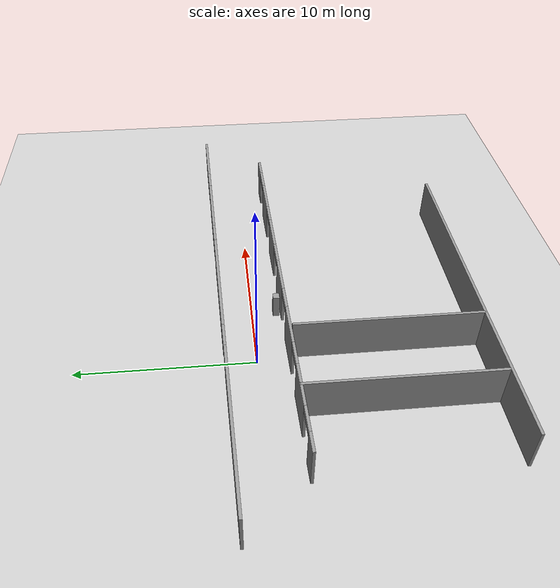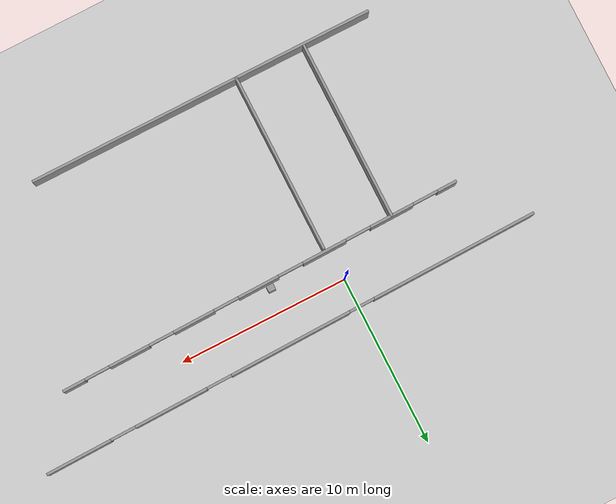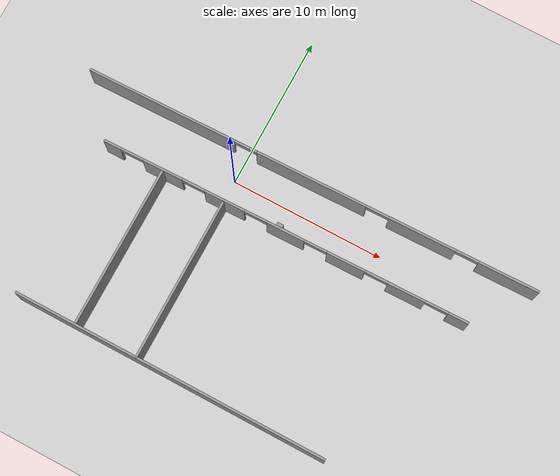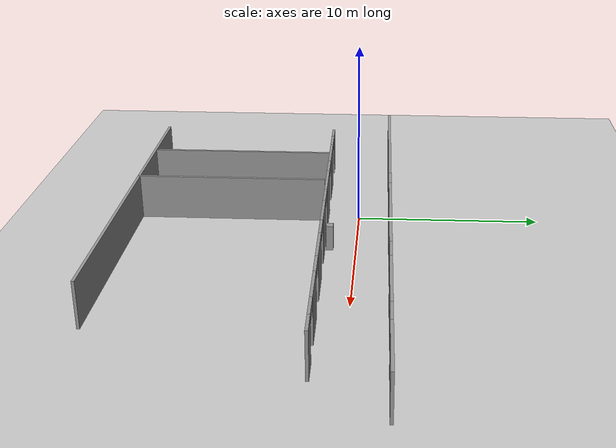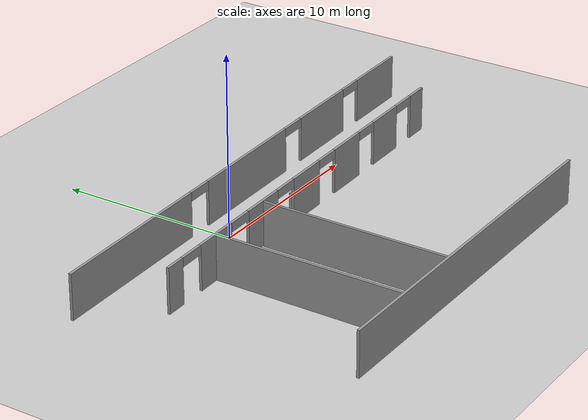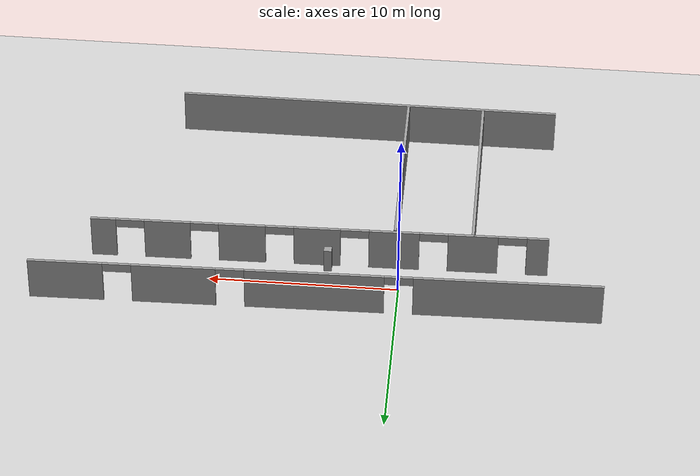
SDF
<sdf version="1.6">
 <world name="default">
  <model name="ground_plane">
   <static>1</static>
   <link name="link">
    <collision name="collision">
     <geometry><plane><normal>0 0 1</normal><size>100 100</size></plane></geometry>
     <surface>
      <contact><collide_bitmask>65535</collide_bitmask></contact>
      <friction><ode><mu>100</mu><mu2>50</mu2></ode></friction>
     </surface>
    </collision>
    <visual name="visual">
     <cast_shadows>0</cast_shadows>
     <geometry><plane><normal>0 0 1</normal><size>100 100</size></plane></geometry>
     <material>
      <script><uri>file://media/materials/scripts/gazebo.material</uri><name>Gazebo/Grey</name></script>
     </material>
    </visual>
   </link>
  </model>
  <model name="six_floor">
   <link name="Wall_118">
    <pose>2.65142 -0.016842 0 0 0 -3.12143</pose>
    <inertial>
     <inertia><ixx>0</ixx><ixy>0</ixy><ixz>0</ixz><iyy>0</iyy><iyz>0</iyz><izz>0</izz></inertia>
     <mass>0</mass>
    </inertial>
    <visual name="Wall_118_Visual_0">
     <pose>-12.9979 0 1.25 0 -0 0</pose>
     <geometry><box><size>3.91824 0.15 2.5</size></box></geometry>
     <material>
      <script><uri>file://media/materials/scripts/gazebo.material</uri><name>Gazebo/Grey</name></script>
      <ambient>1 1 1 1</ambient>
     </material>
     <meta><layer>0</layer></meta>
    </visual>
    <visual name="Wall_118_Visual_1">
     <pose>-7.34373 0 1.25 0 -0 0</pose>
     <geometry><box><size>4.39013 0.15 2.5</size></box></geometry>
     <material>
      <script><uri>file://media/materials/scripts/gazebo.material</uri><name>Gazebo/Grey</name></script>
      <ambient>1 1 1 1</ambient>
     </material>
     <meta><layer>0</layer></meta>
    </visual>
    <visual name="Wall_118_Visual_2">
     <pose>-0.014227 0 1.25 0 -0 0</pose>
     <geometry><box><size>7.26889 0.15 2.5</size></box></geometry>
     <material>
      <script><uri>file://media/materials/scripts/gazebo.material</uri><name>Gazebo/Grey</name></script>
      <ambient>1 1 1 1</ambient>
     </material>
     <meta><layer>0</layer></meta>
    </visual>
    <visual name="Wall_118_Visual_3">
     <pose>10.0386 0 1.25 0 -0 0</pose>
     <geometry><box><size>9.83681 0.15 2.5</size></box></geometry>
     <material>
      <script><uri>file://media/materials/scripts/gazebo.material</uri><name>Gazebo/Grey</name></script>
      <ambient>1 1 1 1</ambient>
     </material>
     <meta><layer>0</layer></meta>
    </visual>
    <visual name="Wall_118_Visual_4">
     <pose>-10.2888 0 2.25 0 -0 0</pose>
     <geometry><box><size>1.5 0.15 0.5</size></box></geometry>
     <material>
      <script><uri>file://media/materials/scripts/gazebo.material</uri><name>Gazebo/Grey</name></script>
      <ambient>1 1 1 1</ambient>
     </material>
     <meta><layer>0</layer></meta>
    </visual>
    <visual name="Wall_118_Visual_5">
     <pose>-4.39867 0 2.25 0 -0 0</pose>
     <geometry><box><size>1.5 0.15 0.5</size></box></geometry>
     <material>
      <script><uri>file://media/materials/scripts/gazebo.material</uri><name>Gazebo/Grey</name></script>
      <ambient>1 1 1 1</ambient>
     </material>
     <meta><layer>0</layer></meta>
    </visual>
    <visual name="Wall_118_Visual_6">
     <pose>4.37022 0 2.25 0 -0 0</pose>
     <geometry><box><size>1.5 0.15 0.5</size></box></geometry>
     <material>
      <script><uri>file://media/materials/scripts/gazebo.material</uri><name>Gazebo/Grey</name></script>
      <ambient>1 1 1 1</ambient>
     </material>
     <meta><layer>0</layer></meta>
    </visual>
    <collision name="Wall_118_Collision_0">
     <pose>-12.9979 0 1.25 0 -0 0</pose>
     <geometry><box><size>3.91824 0.15 2.5</size></box></geometry>
     <surface>
      <friction>
       <ode><mu>1</mu><mu2>1</mu2><fdir1>0 0 0</fdir1><slip1>0</slip1><slip2>0</slip2></ode>
       <torsional>
        <coefficient>1</coefficient>
        <patch_radius>0</patch_radius>
        <surface_radius>0</surface_radius>
        <use_patch_radius>1</use_patch_radius>
        <ode><slip>0</slip></ode>
       </torsional>
      </friction>
      <bounce><restitution_coefficient>0</restitution_coefficient><threshold>1e+06</threshold></bounce>
      <contact>
       <collide_without_contact>0</collide_without_contact>
       <collide_without_contact_bitmask>1</collide_without_contact_bitmask>
       <collide_bitmask>1</collide_bitmask>
       <ode>
        <soft_cfm>0</soft_cfm>
        <soft_erp>0.2</soft_erp>
        <kp>1e+13</kp>
        <kd>1</kd>
        <max_vel>0.01</max_vel>
        <min_depth>0</min_depth>
       </ode>
       <bullet>
        <split_impulse>1</split_impulse>
        <split_impulse_penetration_threshold>-0.01</split_impulse_penetration_threshold>
        <soft_cfm>0</soft_cfm>
        <soft_erp>0.2</soft_erp>
        <kp>1e+13</kp>
        <kd>1</kd>
       </bullet>
      </contact>
     </surface>
    </collision>
    <collision name="Wall_118_Collision_1">
     <pose>-7.34373 0 1.25 0 -0 0</pose>
     <geometry><box><size>4.39013 0.15 2.5</size></box></geometry>
     <surface>
      <friction>
       <ode><mu>1</mu><mu2>1</mu2><fdir1>0 0 0</fdir1><slip1>0</slip1><slip2>0</slip2></ode>
       <torsional>
        <coefficient>1</coefficient>
        <patch_radius>0</patch_radius>
        <surface_radius>0</surface_radius>
        <use_patch_radius>1</use_patch_radius>
        <ode><slip>0</slip></ode>
       </torsional>
      </friction>
      <bounce><restitution_coefficient>0</restitution_coefficient><threshold>1e+06</threshold></bounce>
      <contact>
       <collide_without_contact>0</collide_without_contact>
       <collide_without_contact_bitmask>1</collide_without_contact_bitmask>
       <collide_bitmask>1</collide_bitmask>
       <ode>
        <soft_cfm>0</soft_cfm>
        <soft_erp>0.2</soft_erp>
        <kp>1e+13</kp>
        <kd>1</kd>
        <max_vel>0.01</max_vel>
        <min_depth>0</min_depth>
       </ode>
       <bullet>
        <split_impulse>1</split_impulse>
        <split_impulse_penetration_threshold>-0.01</split_impulse_penetration_threshold>
        <soft_cfm>0</soft_cfm>
        <soft_erp>0.2</soft_erp>
        <kp>1e+13</kp>
        <kd>1</kd>
       </bullet>
      </contact>
     </surface>
    </collision>
    <collision name="Wall_118_Collision_2">
     <pose>-0.014227 0 1.25 0 -0 0</pose>
     <geometry><box><size>7.26889 0.15 2.5</size></box></geometry>
     <surface>
      <friction>
       <ode><mu>1</mu><mu2>1</mu2><fdir1>0 0 0</fdir1><slip1>0</slip1><slip2>0</slip2></ode>
       <torsional>
        <coefficient>1</coefficient>
        <patch_radius>0</patch_radius>
        <surface_radius>0</surface_radius>
        <use_patch_radius>1</use_patch_radius>
        <ode><slip>0</slip></ode>
       </torsional>
      </friction>
      <bounce><restitution_coefficient>0</restitution_coefficient><threshold>1e+06</threshold></bounce>
      <contact>
       <collide_without_contact>0</collide_without_contact>
       <collide_without_contact_bitmask>1</collide_without_contact_bitmask>
       <collide_bitmask>1</collide_bitmask>
       <ode>
        <soft_cfm>0</soft_cfm>
        <soft_erp>0.2</soft_erp>
        <kp>1e+13</kp>
        <kd>1</kd>
        <max_vel>0.01</max_vel>
        <min_depth>0</min_depth>
       </ode>
       <bullet>
        <split_impulse>1</split_impulse>
        <split_impulse_penetration_threshold>-0.01</split_impulse_penetration_threshold>
        <soft_cfm>0</soft_cfm>
        <soft_erp>0.2</soft_erp>
        <kp>1e+13</kp>
        <kd>1</kd>
       </bullet>
      </contact>
     </surface>
    </collision>
    <collision name="Wall_118_Collision_4">
     <pose>-10.2888 0 2.25 0 -0 0</pose>
     <geometry><box><size>1.5 0.15 0.5</size></box></geometry>
     <surface>
      <friction>
       <ode><mu>1</mu><mu2>1</mu2><fdir1>0 0 0</fdir1><slip1>0</slip1><slip2>0</slip2></ode>
       <torsional>
        <coefficient>1</coefficient>
        <patch_radius>0</patch_radius>
        <surface_radius>0</surface_radius>
        <use_patch_radius>1</use_patch_radius>
        <ode><slip>0</slip></ode>
       </torsional>
      </friction>
      <bounce><restitution_coefficient>0</restitution_coefficient><threshold>1e+06</threshold></bounce>
      <contact>
       <collide_without_contact>0</collide_without_contact>
       <collide_without_contact_bitmask>1</collide_without_contact_bitmask>
       <collide_bitmask>1</collide_bitmask>
       <ode>
        <soft_cfm>0</soft_cfm>
        <soft_erp>0.2</soft_erp>
        <kp>1e+13</kp>
        <kd>1</kd>
        <max_vel>0.01</max_vel>
        <min_depth>0</min_depth>
       </ode>
       <bullet>
        <split_impulse>1</split_impulse>
        <split_impulse_penetration_threshold>-0.01</split_impulse_penetration_threshold>
        <soft_cfm>0</soft_cfm>
        <soft_erp>0.2</soft_erp>
        <kp>1e+13</kp>
        <kd>1</kd>
       </bullet>
      </contact>
     </surface>
    </collision>
    <collision name="Wall_118_Collision_3">
     <pose>10.0386 0 1.25 0 -0 0</pose>
     <geometry><box><size>9.83681 0.15 2.5</size></box></geometry>
     <surface>
      <friction>
       <ode><mu>1</mu><mu2>1</mu2><fdir1>0 0 0</fdir1><slip1>0</slip1><slip2>0</slip2></ode>
       <torsional>
        <coefficient>1</coefficient>
        <patch_radius>0</patch_radius>
        <surface_radius>0</surface_radius>
        <use_patch_radius>1</use_patch_radius>
        <ode><slip>0</slip></ode>
       </torsional>
      </friction>
      <bounce><restitution_coefficient>0</restitution_coefficient><threshold>1e+06</threshold></bounce>
      <contact>
       <collide_without_contact>0</collide_without_contact>
       <collide_without_contact_bitmask>1</collide_without_contact_bitmask>
       <collide_bitmask>1</collide_bitmask>
       <ode>
        <soft_cfm>0</soft_cfm>
        <soft_erp>0.2</soft_erp>
        <kp>1e+13</kp>
        <kd>1</kd>
        <max_vel>0.01</max_vel>
        <min_depth>0</min_depth>
       </ode>
       <bullet>
        <split_impulse>1</split_impulse>
        <split_impulse_penetration_threshold>-0.01</split_impulse_penetration_threshold>
        <soft_cfm>0</soft_cfm>
        <soft_erp>0.2</soft_erp>
        <kp>1e+13</kp>
        <kd>1</kd>
       </bullet>
      </contact>
     </surface>
    </collision>
    <collision name="Wall_118_Collision_5">
     <pose>-4.39867 0 2.25 0 -0 0</pose>
     <geometry><box><size>1.5 0.15 0.5</size></box></geometry>
     <surface>
      <friction>
       <ode><mu>1</mu><mu2>1</mu2><fdir1>0 0 0</fdir1><slip1>0</slip1><slip2>0</slip2></ode>
       <torsional>
        <coefficient>1</coefficient>
        <patch_radius>0</patch_radius>
        <surface_radius>0</surface_radius>
        <use_patch_radius>1</use_patch_radius>
        <ode><slip>0</slip></ode>
       </torsional>
      </friction>
      <bounce><restitution_coefficient>0</restitution_coefficient><threshold>1e+06</threshold></bounce>
      <contact>
       <collide_without_contact>0</collide_without_contact>
       <collide_without_contact_bitmask>1</collide_without_contact_bitmask>
       <collide_bitmask>1</collide_bitmask>
       <ode>
        <soft_cfm>0</soft_cfm>
        <soft_erp>0.2</soft_erp>
        <kp>1e+13</kp>
        <kd>1</kd>
        <max_vel>0.01</max_vel>
        <min_depth>0</min_depth>
       </ode>
       <bullet>
        <split_impulse>1</split_impulse>
        <split_impulse_penetration_threshold>-0.01</split_impulse_penetration_threshold>
        <soft_cfm>0</soft_cfm>
        <soft_erp>0.2</soft_erp>
        <kp>1e+13</kp>
        <kd>1</kd>
       </bullet>
      </contact>
     </surface>
    </collision>
    <collision name="Wall_118_Collision_6">
     <pose>4.37022 0 2.25 0 -0 0</pose>
     <geometry><box><size>1.5 0.15 0.5</size></box></geometry>
     <surface>
      <friction>
       <ode><mu>1</mu><mu2>1</mu2><fdir1>0 0 0</fdir1><slip1>0</slip1><slip2>0</slip2></ode>
       <torsional>
        <coefficient>1</coefficient>
        <patch_radius>0</patch_radius>
        <surface_radius>0</surface_radius>
        <use_patch_radius>1</use_patch_radius>
        <ode><slip>0</slip></ode>
       </torsional>
      </friction>
      <bounce><restitution_coefficient>0</restitution_coefficient><threshold>1e+06</threshold></bounce>
      <contact>
       <collide_without_contact>0</collide_without_contact>
       <collide_without_contact_bitmask>1</collide_without_contact_bitmask>
       <collide_bitmask>1</collide_bitmask>
       <ode>
        <soft_cfm>0</soft_cfm>
        <soft_erp>0.2</soft_erp>
        <kp>1e+13</kp>
        <kd>1</kd>
        <max_vel>0.01</max_vel>
        <min_depth>0</min_depth>
       </ode>
       <bullet>
        <split_impulse>1</split_impulse>
        <split_impulse_penetration_threshold>-0.01</split_impulse_penetration_threshold>
        <soft_cfm>0</soft_cfm>
        <soft_erp>0.2</soft_erp>
        <kp>1e+13</kp>
        <kd>1</kd>
       </bullet>
      </contact>
     </surface>
    </collision>
   </link>
   <link name="Wall_124">
    <pose>-1.27766 -8.99797 0 0 0 -1.5708</pose>
    <visual name="Wall_124_Visual">
     <pose>0 0 1.25 0 -0 0</pose>
     <geometry><box><size>10.5 0.15 2.5</size></box></geometry>
     <material>
      <script><uri>file://media/materials/scripts/gazebo.material</uri><name>Gazebo/Grey</name></script>
      <ambient>1 1 1 1</ambient>
     </material>
     <meta><layer>0</layer></meta>
    </visual>
    <collision name="Wall_124_Collision">
     <pose>0 0 1.25 0 -0 0</pose>
     <geometry><box><size>10.5 0.15 2.5</size></box></geometry>
     <surface>
      <friction>
       <ode><mu>1</mu><mu2>1</mu2><fdir1>0 0 0</fdir1><slip1>0</slip1><slip2>0</slip2></ode>
       <torsional>
        <coefficient>1</coefficient>
        <patch_radius>0</patch_radius>
        <surface_radius>0</surface_radius>
        <use_patch_radius>1</use_patch_radius>
        <ode><slip>0</slip></ode>
       </torsional>
      </friction>
      <bounce><restitution_coefficient>0</restitution_coefficient><threshold>1e+06</threshold></bounce>
      <contact>
       <collide_without_contact>0</collide_without_contact>
       <collide_without_contact_bitmask>1</collide_without_contact_bitmask>
       <collide_bitmask>1</collide_bitmask>
       <ode>
        <soft_cfm>0</soft_cfm>
        <soft_erp>0.2</soft_erp>
        <kp>1e+13</kp>
        <kd>1</kd>
        <max_vel>0.01</max_vel>
        <min_depth>0</min_depth>
       </ode>
       <bullet>
        <split_impulse>1</split_impulse>
        <split_impulse_penetration_threshold>-0.01</split_impulse_penetration_threshold>
        <soft_cfm>0</soft_cfm>
        <soft_erp>0.2</soft_erp>
        <kp>1e+13</kp>
        <kd>1</kd>
       </bullet>
      </contact>
     </surface>
    </collision>
   </link>
   <link name="Wall_128">
    <pose>-5.37153 -8.90735 0 0 0 -1.5708</pose>
    <visual name="Wall_128_Visual">
     <pose>0 0 1.25 0 -0 0</pose>
     <geometry><box><size>10.5 0.15 2.5</size></box></geometry>
     <material>
      <script><uri>file://media/materials/scripts/gazebo.material</uri><name>Gazebo/Grey</name></script>
      <ambient>1 1 1 1</ambient>
     </material>
     <meta><layer>0</layer></meta>
    </visual>
    <collision name="Wall_128_Collision">
     <pose>0 0 1.25 0 -0 0</pose>
     <geometry><box><size>10.5 0.15 2.5</size></box></geometry>
     <surface>
      <friction>
       <ode><mu>1</mu><mu2>1</mu2><fdir1>0 0 0</fdir1><slip1>0</slip1><slip2>0</slip2></ode>
       <torsional>
        <coefficient>1</coefficient>
        <patch_radius>0</patch_radius>
        <surface_radius>0</surface_radius>
        <use_patch_radius>1</use_patch_radius>
        <ode><slip>0</slip></ode>
       </torsional>
      </friction>
      <bounce><restitution_coefficient>0</restitution_coefficient><threshold>1e+06</threshold></bounce>
      <contact>
       <collide_without_contact>0</collide_without_contact>
       <collide_without_contact_bitmask>1</collide_without_contact_bitmask>
       <collide_bitmask>1</collide_bitmask>
       <ode>
        <soft_cfm>0</soft_cfm>
        <soft_erp>0.2</soft_erp>
        <kp>1e+13</kp>
        <kd>1</kd>
        <max_vel>0.01</max_vel>
        <min_depth>0</min_depth>
       </ode>
       <bullet>
        <split_impulse>1</split_impulse>
        <split_impulse_penetration_threshold>-0.01</split_impulse_penetration_threshold>
        <soft_cfm>0</soft_cfm>
        <soft_erp>0.2</soft_erp>
        <kp>1e+13</kp>
        <kd>1</kd>
       </bullet>
      </contact>
     </surface>
    </collision>
   </link>
   <link name="Wall_149">
    <pose>0.892383 -14.2162 0 0 -0 0</pose>
    <visual name="Wall_149_Visual">
     <pose>0 0 1.25 0 -0 0</pose>
     <geometry><box><size>20.5 0.15 2.5</size></box></geometry>
     <material>
      <script><uri>file://media/materials/scripts/gazebo.material</uri><name>Gazebo/Grey</name></script>
      <ambient>1 1 1 1</ambient>
     </material>
     <meta><layer>0</layer></meta>
    </visual>
    <collision name="Wall_149_Collision">
     <pose>0 0 1.25 0 -0 0</pose>
     <geometry><box><size>20.5 0.15 2.5</size></box></geometry>
     <surface>
      <friction>
       <ode><mu>1</mu><mu2>1</mu2><fdir1>0 0 0</fdir1><slip1>0</slip1><slip2>0</slip2></ode>
       <torsional>
        <coefficient>1</coefficient>
        <patch_radius>0</patch_radius>
        <surface_radius>0</surface_radius>
        <use_patch_radius>1</use_patch_radius>
        <ode><slip>0</slip></ode>
       </torsional>
      </friction>
      <bounce><restitution_coefficient>0</restitution_coefficient><threshold>1e+06</threshold></bounce>
      <contact>
       <collide_without_contact>0</collide_without_contact>
       <collide_without_contact_bitmask>1</collide_without_contact_bitmask>
       <collide_bitmask>1</collide_bitmask>
       <ode>
        <soft_cfm>0</soft_cfm>
        <soft_erp>0.2</soft_erp>
        <kp>1e+13</kp>
        <kd>1</kd>
        <max_vel>0.01</max_vel>
        <min_depth>0</min_depth>
       </ode>
       <bullet>
        <split_impulse>1</split_impulse>
        <split_impulse_penetration_threshold>-0.01</split_impulse_penetration_threshold>
        <soft_cfm>0</soft_cfm>
        <soft_erp>0.2</soft_erp>
        <kp>1e+13</kp>
        <kd>1</kd>
       </bullet>
      </contact>
     </surface>
    </collision>
   </link>
   <link name="Wall_98">
    <pose>2.72227 -3.54061 0 0 0 -3.12281</pose>
    <visual name="Wall_98_Visual_0">
     <pose>-11.4135 0 1.25 0 -0 0</pose>
     <geometry><box><size>1.33698 0.15 2.5</size></box></geometry>
     <material>
      <script><uri>file://media/materials/scripts/gazebo.material</uri><name>Gazebo/Grey</name></script>
      <ambient>1 1 1 1</ambient>
     </material>
     <meta><layer>0</layer></meta>
    </visual>
    <visual name="Wall_98_Visual_1">
     <pose>-8.02599 0 1.25 0 -0 0</pose>
     <geometry><box><size>2.43807 0.15 2.5</size></box></geometry>
     <material>
      <script><uri>file://media/materials/scripts/gazebo.material</uri><name>Gazebo/Grey</name></script>
      <ambient>1 1 1 1</ambient>
     </material>
     <meta><layer>0</layer></meta>
    </visual>
    <visual name="Wall_98_Visual_2">
     <pose>-4.06675 0 1.25 0 -0 0</pose>
     <geometry><box><size>2.48042 0.15 2.5</size></box></geometry>
     <material>
      <script><uri>file://media/materials/scripts/gazebo.material</uri><name>Gazebo/Grey</name></script>
      <ambient>1 1 1 1</ambient>
     </material>
     <meta><layer>0</layer></meta>
    </visual>
    <visual name="Wall_98_Visual_3">
     <pose>-0.096859 0 1.25 0 -0 0</pose>
     <geometry><box><size>2.45936 0.15 2.5</size></box></geometry>
     <material>
      <script><uri>file://media/materials/scripts/gazebo.material</uri><name>Gazebo/Grey</name></script>
      <ambient>1 1 1 1</ambient>
     </material>
     <meta><layer>0</layer></meta>
    </visual>
    <visual name="Wall_98_Visual_4">
     <pose>3.96107 0 1.25 0 -0 0</pose>
     <geometry><box><size>2.65651 0.15 2.5</size></box></geometry>
     <material>
      <script><uri>file://media/materials/scripts/gazebo.material</uri><name>Gazebo/Grey</name></script>
      <ambient>1 1 1 1</ambient>
     </material>
     <meta><layer>0</layer></meta>
    </visual>
    <visual name="Wall_98_Visual_5">
     <pose>8.10694 0 1.25 0 -0 0</pose>
     <geometry><box><size>2.63522 0.15 2.5</size></box></geometry>
     <material>
      <script><uri>file://media/materials/scripts/gazebo.material</uri><name>Gazebo/Grey</name></script>
      <ambient>1 1 1 1</ambient>
     </material>
     <meta><layer>0</layer></meta>
    </visual>
    <visual name="Wall_98_Visual_6">
     <pose>11.5033 0 1.25 0 -0 0</pose>
     <geometry><box><size>1.15746 0.15 2.5</size></box></geometry>
     <material>
      <script><uri>file://media/materials/scripts/gazebo.material</uri><name>Gazebo/Grey</name></script>
      <ambient>1 1 1 1</ambient>
     </material>
     <meta><layer>0</layer></meta>
    </visual>
    <visual name="Wall_98_Visual_7">
     <pose>-9.99503 0 2.25 0 -0 0</pose>
     <geometry><box><size>1.5 0.15 0.5</size></box></geometry>
     <material>
      <script><uri>file://media/materials/scripts/gazebo.material</uri><name>Gazebo/Grey</name></script>
      <ambient>1 1 1 1</ambient>
     </material>
     <meta><layer>0</layer></meta>
    </visual>
    <visual name="Wall_98_Visual_8">
     <pose>-6.05696 0 2.25 0 -0 0</pose>
     <geometry><box><size>1.5 0.15 0.5</size></box></geometry>
     <material>
      <script><uri>file://media/materials/scripts/gazebo.material</uri><name>Gazebo/Grey</name></script>
      <ambient>1 1 1 1</ambient>
     </material>
     <meta><layer>0</layer></meta>
    </visual>
    <visual name="Wall_98_Visual_9">
     <pose>-2.07654 0 2.25 0 -0 0</pose>
     <geometry><box><size>1.5 0.15 0.5</size></box></geometry>
     <material>
      <script><uri>file://media/materials/scripts/gazebo.material</uri><name>Gazebo/Grey</name></script>
      <ambient>1 1 1 1</ambient>
     </material>
     <meta><layer>0</layer></meta>
    </visual>
    <visual name="Wall_98_Visual_10">
     <pose>1.88282 0 2.25 0 -0 0</pose>
     <geometry><box><size>1.5 0.15 0.5</size></box></geometry>
     <material>
      <script><uri>file://media/materials/scripts/gazebo.material</uri><name>Gazebo/Grey</name></script>
      <ambient>1 1 1 1</ambient>
     </material>
     <meta><layer>0</layer></meta>
    </visual>
    <visual name="Wall_98_Visual_11">
     <pose>6.03933 0 2.25 0 -0 0</pose>
     <geometry><box><size>1.5 0.15 0.5</size></box></geometry>
     <material>
      <script><uri>file://media/materials/scripts/gazebo.material</uri><name>Gazebo/Grey</name></script>
      <ambient>1 1 1 1</ambient>
     </material>
     <meta><layer>0</layer></meta>
    </visual>
    <visual name="Wall_98_Visual_12">
     <pose>10.1745 0 2.25 0 -0 0</pose>
     <geometry><box><size>1.5 0.15 0.5</size></box></geometry>
     <material>
      <script><uri>file://media/materials/scripts/gazebo.material</uri><name>Gazebo/Grey</name></script>
      <ambient>1 1 1 1</ambient>
     </material>
     <meta><layer>0</layer></meta>
    </visual>
    <collision name="Wall_98_Collision_0">
     <pose>-11.4135 0 1.25 0 -0 0</pose>
     <geometry><box><size>1.33698 0.15 2.5</size></box></geometry>
     <surface>
      <friction>
       <ode><mu>1</mu><mu2>1</mu2><fdir1>0 0 0</fdir1><slip1>0</slip1><slip2>0</slip2></ode>
       <torsional>
        <coefficient>1</coefficient>
        <patch_radius>0</patch_radius>
        <surface_radius>0</surface_radius>
        <use_patch_radius>1</use_patch_radius>
        <ode><slip>0</slip></ode>
       </torsional>
      </friction>
      <bounce><restitution_coefficient>0</restitution_coefficient><threshold>1e+06</threshold></bounce>
      <contact>
       <collide_without_contact>0</collide_without_contact>
       <collide_without_contact_bitmask>1</collide_without_contact_bitmask>
       <collide_bitmask>1</collide_bitmask>
       <ode>
        <soft_cfm>0</soft_cfm>
        <soft_erp>0.2</soft_erp>
        <kp>1e+13</kp>
        <kd>1</kd>
        <max_vel>0.01</max_vel>
        <min_depth>0</min_depth>
       </ode>
       <bullet>
        <split_impulse>1</split_impulse>
        <split_impulse_penetration_threshold>-0.01</split_impulse_penetration_threshold>
        <soft_cfm>0</soft_cfm>
        <soft_erp>0.2</soft_erp>
        <kp>1e+13</kp>
        <kd>1</kd>
       </bullet>
      </contact>
     </surface>
    </collision>
    <collision name="Wall_98_Collision_1">
     <pose>-8.02599 0 1.25 0 -0 0</pose>
     <geometry><box><size>2.43807 0.15 2.5</size></box></geometry>
     <surface>
      <friction>
       <ode><mu>1</mu><mu2>1</mu2><fdir1>0 0 0</fdir1><slip1>0</slip1><slip2>0</slip2></ode>
       <torsional>
        <coefficient>1</coefficient>
        <patch_radius>0</patch_radius>
        <surface_radius>0</surface_radius>
        <use_patch_radius>1</use_patch_radius>
        <ode><slip>0</slip></ode>
       </torsional>
      </friction>
      <bounce><restitution_coefficient>0</restitution_coefficient><threshold>1e+06</threshold></bounce>
      <contact>
       <collide_without_contact>0</collide_without_contact>
       <collide_without_contact_bitmask>1</collide_without_contact_bitmask>
       <collide_bitmask>1</collide_bitmask>
       <ode>
        <soft_cfm>0</soft_cfm>
        <soft_erp>0.2</soft_erp>
        <kp>1e+13</kp>
        <kd>1</kd>
        <max_vel>0.01</max_vel>
        <min_depth>0</min_depth>
       </ode>
       <bullet>
        <split_impulse>1</split_impulse>
        <split_impulse_penetration_threshold>-0.01</split_impulse_penetration_threshold>
        <soft_cfm>0</soft_cfm>
        <soft_erp>0.2</soft_erp>
        <kp>1e+13</kp>
        <kd>1</kd>
       </bullet>
      </contact>
     </surface>
    </collision>
    <collision name="Wall_98_Collision_2">
     <pose>-4.06675 0 1.25 0 -0 0</pose>
     <geometry><box><size>2.48042 0.15 2.5</size></box></geometry>
     <surface>
      <friction>
       <ode><mu>1</mu><mu2>1</mu2><fdir1>0 0 0</fdir1><slip1>0</slip1><slip2>0</slip2></ode>
       <torsional>
        <coefficient>1</coefficient>
        <patch_radius>0</patch_radius>
        <surface_radius>0</surface_radius>
        <use_patch_radius>1</use_patch_radius>
        <ode><slip>0</slip></ode>
       </torsional>
      </friction>
      <bounce><restitution_coefficient>0</restitution_coefficient><threshold>1e+06</threshold></bounce>
      <contact>
       <collide_without_contact>0</collide_without_contact>
       <collide_without_contact_bitmask>1</collide_without_contact_bitmask>
       <collide_bitmask>1</collide_bitmask>
       <ode>
        <soft_cfm>0</soft_cfm>
        <soft_erp>0.2</soft_erp>
        <kp>1e+13</kp>
        <kd>1</kd>
        <max_vel>0.01</max_vel>
        <min_depth>0</min_depth>
       </ode>
       <bullet>
        <split_impulse>1</split_impulse>
        <split_impulse_penetration_threshold>-0.01</split_impulse_penetration_threshold>
        <soft_cfm>0</soft_cfm>
        <soft_erp>0.2</soft_erp>
        <kp>1e+13</kp>
        <kd>1</kd>
       </bullet>
      </contact>
     </surface>
    </collision>
    <collision name="Wall_98_Collision_3">
     <pose>-0.096859 0 1.25 0 -0 0</pose>
     <geometry><box><size>2.45936 0.15 2.5</size></box></geometry>
     <surface>
      <friction>
       <ode><mu>1</mu><mu2>1</mu2><fdir1>0 0 0</fdir1><slip1>0</slip1><slip2>0</slip2></ode>
       <torsional>
        <coefficient>1</coefficient>
        <patch_radius>0</patch_radius>
        <surface_radius>0</surface_radius>
        <use_patch_radius>1</use_patch_radius>
        <ode><slip>0</slip></ode>
       </torsional>
      </friction>
      <bounce><restitution_coefficient>0</restitution_coefficient><threshold>1e+06</threshold></bounce>
      <contact>
       <collide_without_contact>0</collide_without_contact>
       <collide_without_contact_bitmask>1</collide_without_contact_bitmask>
       <collide_bitmask>1</collide_bitmask>
       <ode>
        <soft_cfm>0</soft_cfm>
        <soft_erp>0.2</soft_erp>
        <kp>1e+13</kp>
        <kd>1</kd>
        <max_vel>0.01</max_vel>
        <min_depth>0</min_depth>
       </ode>
       <bullet>
        <split_impulse>1</split_impulse>
        <split_impulse_penetration_threshold>-0.01</split_impulse_penetration_threshold>
        <soft_cfm>0</soft_cfm>
        <soft_erp>0.2</soft_erp>
        <kp>1e+13</kp>
        <kd>1</kd>
       </bullet>
      </contact>
     </surface>
    </collision>
    <collision name="Wall_98_Collision_4">
     <pose>3.96107 0 1.25 0 -0 0</pose>
     <geometry><box><size>2.65651 0.15 2.5</size></box></geometry>
     <surface>
      <friction>
       <ode><mu>1</mu><mu2>1</mu2><fdir1>0 0 0</fdir1><slip1>0</slip1><slip2>0</slip2></ode>
       <torsional>
        <coefficient>1</coefficient>
        <patch_radius>0</patch_radius>
        <surface_radius>0</surface_radius>
        <use_patch_radius>1</use_patch_radius>
        <ode><slip>0</slip></ode>
       </torsional>
      </friction>
      <bounce><restitution_coefficient>0</restitution_coefficient><threshold>1e+06</threshold></bounce>
      <contact>
       <collide_without_contact>0</collide_without_contact>
       <collide_without_contact_bitmask>1</collide_without_contact_bitmask>
       <collide_bitmask>1</collide_bitmask>
       <ode>
        <soft_cfm>0</soft_cfm>
        <soft_erp>0.2</soft_erp>
        <kp>1e+13</kp>
        <kd>1</kd>
        <max_vel>0.01</max_vel>
        <min_depth>0</min_depth>
       </ode>
       <bullet>
        <split_impulse>1</split_impulse>
        <split_impulse_penetration_threshold>-0.01</split_impulse_penetration_threshold>
        <soft_cfm>0</soft_cfm>
        <soft_erp>0.2</soft_erp>
        <kp>1e+13</kp>
        <kd>1</kd>
       </bullet>
      </contact>
     </surface>
    </collision>
    <collision name="Wall_98_Collision_5">
     <pose>8.10694 0 1.25 0 -0 0</pose>
     <geometry><box><size>2.63522 0.15 2.5</size></box></geometry>
     <surface>
      <friction>
       <ode><mu>1</mu><mu2>1</mu2><fdir1>0 0 0</fdir1><slip1>0</slip1><slip2>0</slip2></ode>
       <torsional>
        <coefficient>1</coefficient>
        <patch_radius>0</patch_radius>
        <surface_radius>0</surface_radius>
        <use_patch_radius>1</use_patch_radius>
        <ode><slip>0</slip></ode>
       </torsional>
      </friction>
      <bounce><restitution_coefficient>0</restitution_coefficient><threshold>1e+06</threshold></bounce>
      <contact>
       <collide_without_contact>0</collide_without_contact>
       <collide_without_contact_bitmask>1</collide_without_contact_bitmask>
       <collide_bitmask>1</collide_bitmask>
       <ode>
        <soft_cfm>0</soft_cfm>
        <soft_erp>0.2</soft_erp>
        <kp>1e+13</kp>
        <kd>1</kd>
        <max_vel>0.01</max_vel>
        <min_depth>0</min_depth>
       </ode>
       <bullet>
        <split_impulse>1</split_impulse>
        <split_impulse_penetration_threshold>-0.01</split_impulse_penetration_threshold>
        <soft_cfm>0</soft_cfm>
        <soft_erp>0.2</soft_erp>
        <kp>1e+13</kp>
        <kd>1</kd>
       </bullet>
      </contact>
     </surface>
    </collision>
    <collision name="Wall_98_Collision_6">
     <pose>11.5033 0 1.25 0 -0 0</pose>
     <geometry><box><size>1.15746 0.15 2.5</size></box></geometry>
     <surface>
      <friction>
       <ode><mu>1</mu><mu2>1</mu2><fdir1>0 0 0</fdir1><slip1>0</slip1><slip2>0</slip2></ode>
       <torsional>
        <coefficient>1</coefficient>
        <patch_radius>0</patch_radius>
        <surface_radius>0</surface_radius>
        <use_patch_radius>1</use_patch_radius>
        <ode><slip>0</slip></ode>
       </torsional>
      </friction>
      <bounce><restitution_coefficient>0</restitution_coefficient><threshold>1e+06</threshold></bounce>
      <contact>
       <collide_without_contact>0</collide_without_contact>
       <collide_without_contact_bitmask>1</collide_without_contact_bitmask>
       <collide_bitmask>1</collide_bitmask>
       <ode>
        <soft_cfm>0</soft_cfm>
        <soft_erp>0.2</soft_erp>
        <kp>1e+13</kp>
        <kd>1</kd>
        <max_vel>0.01</max_vel>
        <min_depth>0</min_depth>
       </ode>
       <bullet>
        <split_impulse>1</split_impulse>
        <split_impulse_penetration_threshold>-0.01</split_impulse_penetration_threshold>
        <soft_cfm>0</soft_cfm>
        <soft_erp>0.2</soft_erp>
        <kp>1e+13</kp>
        <kd>1</kd>
       </bullet>
      </contact>
     </surface>
    </collision>
    <collision name="Wall_98_Collision_7">
     <pose>-9.99503 0 2.25 0 -0 0</pose>
     <geometry><box><size>1.5 0.15 0.5</size></box></geometry>
     <surface>
      <friction>
       <ode><mu>1</mu><mu2>1</mu2><fdir1>0 0 0</fdir1><slip1>0</slip1><slip2>0</slip2></ode>
       <torsional>
        <coefficient>1</coefficient>
        <patch_radius>0</patch_radius>
        <surface_radius>0</surface_radius>
        <use_patch_radius>1</use_patch_radius>
        <ode><slip>0</slip></ode>
       </torsional>
      </friction>
      <bounce><restitution_coefficient>0</restitution_coefficient><threshold>1e+06</threshold></bounce>
      <contact>
       <collide_without_contact>0</collide_without_contact>
       <collide_without_contact_bitmask>1</collide_without_contact_bitmask>
       <collide_bitmask>1</collide_bitmask>
       <ode>
        <soft_cfm>0</soft_cfm>
        <soft_erp>0.2</soft_erp>
        <kp>1e+13</kp>
        <kd>1</kd>
        <max_vel>0.01</max_vel>
        <min_depth>0</min_depth>
       </ode>
       <bullet>
        <split_impulse>1</split_impulse>
        <split_impulse_penetration_threshold>-0.01</split_impulse_penetration_threshold>
        <soft_cfm>0</soft_cfm>
        <soft_erp>0.2</soft_erp>
        <kp>1e+13</kp>
        <kd>1</kd>
       </bullet>
      </contact>
     </surface>
    </collision>
    <collision name="Wall_98_Collision_8">
     <pose>-6.05696 0 2.25 0 -0 0</pose>
     <geometry><box><size>1.5 0.15 0.5</size></box></geometry>
     <surface>
      <friction>
       <ode><mu>1</mu><mu2>1</mu2><fdir1>0 0 0</fdir1><slip1>0</slip1><slip2>0</slip2></ode>
       <torsional>
        <coefficient>1</coefficient>
        <patch_radius>0</patch_radius>
        <surface_radius>0</surface_radius>
        <use_patch_radius>1</use_patch_radius>
        <ode><slip>0</slip></ode>
       </torsional>
      </friction>
      <bounce><restitution_coefficient>0</restitution_coefficient><threshold>1e+06</threshold></bounce>
      <contact>
       <collide_without_contact>0</collide_without_contact>
       <collide_without_contact_bitmask>1</collide_without_contact_bitmask>
       <collide_bitmask>1</collide_bitmask>
       <ode>
        <soft_cfm>0</soft_cfm>
        <soft_erp>0.2</soft_erp>
        <kp>1e+13</kp>
        <kd>1</kd>
        <max_vel>0.01</max_vel>
        <min_depth>0</min_depth>
       </ode>
       <bullet>
        <split_impulse>1</split_impulse>
        <split_impulse_penetration_threshold>-0.01</split_impulse_penetration_threshold>
        <soft_cfm>0</soft_cfm>
        <soft_erp>0.2</soft_erp>
        <kp>1e+13</kp>
        <kd>1</kd>
       </bullet>
      </contact>
     </surface>
    </collision>
    <collision name="Wall_98_Collision_9">
     <pose>-2.07654 0 2.25 0 -0 0</pose>
     <geometry><box><size>1.5 0.15 0.5</size></box></geometry>
     <surface>
      <friction>
       <ode><mu>1</mu><mu2>1</mu2><fdir1>0 0 0</fdir1><slip1>0</slip1><slip2>0</slip2></ode>
       <torsional>
        <coefficient>1</coefficient>
        <patch_radius>0</patch_radius>
        <surface_radius>0</surface_radius>
        <use_patch_radius>1</use_patch_radius>
        <ode><slip>0</slip></ode>
       </torsional>
      </friction>
      <bounce><restitution_coefficient>0</restitution_coefficient><threshold>1e+06</threshold></bounce>
      <contact>
       <collide_without_contact>0</collide_without_contact>
       <collide_without_contact_bitmask>1</collide_without_contact_bitmask>
       <collide_bitmask>1</collide_bitmask>
       <ode>
        <soft_cfm>0</soft_cfm>
        <soft_erp>0.2</soft_erp>
        <kp>1e+13</kp>
        <kd>1</kd>
        <max_vel>0.01</max_vel>
        <min_depth>0</min_depth>
       </ode>
       <bullet>
        <split_impulse>1</split_impulse>
        <split_impulse_penetration_threshold>-0.01</split_impulse_penetration_threshold>
        <soft_cfm>0</soft_cfm>
        <soft_erp>0.2</soft_erp>
        <kp>1e+13</kp>
        <kd>1</kd>
       </bullet>
      </contact>
     </surface>
    </collision>
    <collision name="Wall_98_Collision_10">
     <pose>1.88282 0 2.25 0 -0 0</pose>
     <geometry><box><size>1.5 0.15 0.5</size></box></geometry>
     <surface>
      <friction>
       <ode><mu>1</mu><mu2>1</mu2><fdir1>0 0 0</fdir1><slip1>0</slip1><slip2>0</slip2></ode>
       <torsional>
        <coefficient>1</coefficient>
        <patch_radius>0</patch_radius>
        <surface_radius>0</surface_radius>
        <use_patch_radius>1</use_patch_radius>
        <ode><slip>0</slip></ode>
       </torsional>
      </friction>
      <bounce><restitution_coefficient>0</restitution_coefficient><threshold>1e+06</threshold></bounce>
      <contact>
       <collide_without_contact>0</collide_without_contact>
       <collide_without_contact_bitmask>1</collide_without_contact_bitmask>
       <collide_bitmask>1</collide_bitmask>
       <ode>
        <soft_cfm>0</soft_cfm>
        <soft_erp>0.2</soft_erp>
        <kp>1e+13</kp>
        <kd>1</kd>
        <max_vel>0.01</max_vel>
        <min_depth>0</min_depth>
       </ode>
       <bullet>
        <split_impulse>1</split_impulse>
        <split_impulse_penetration_threshold>-0.01</split_impulse_penetration_threshold>
        <soft_cfm>0</soft_cfm>
        <soft_erp>0.2</soft_erp>
        <kp>1e+13</kp>
        <kd>1</kd>
       </bullet>
      </contact>
     </surface>
    </collision>
    <collision name="Wall_98_Collision_11">
     <pose>6.03933 0 2.25 0 -0 0</pose>
     <geometry><box><size>1.5 0.15 0.5</size></box></geometry>
     <surface>
      <friction>
       <ode><mu>1</mu><mu2>1</mu2><fdir1>0 0 0</fdir1><slip1>0</slip1><slip2>0</slip2></ode>
       <torsional>
        <coefficient>1</coefficient>
        <patch_radius>0</patch_radius>
        <surface_radius>0</surface_radius>
        <use_patch_radius>1</use_patch_radius>
        <ode><slip>0</slip></ode>
       </torsional>
      </friction>
      <bounce><restitution_coefficient>0</restitution_coefficient><threshold>1e+06</threshold></bounce>
      <contact>
       <collide_without_contact>0</collide_without_contact>
       <collide_without_contact_bitmask>1</collide_without_contact_bitmask>
       <collide_bitmask>1</collide_bitmask>
       <ode>
        <soft_cfm>0</soft_cfm>
        <soft_erp>0.2</soft_erp>
        <kp>1e+13</kp>
        <kd>1</kd>
        <max_vel>0.01</max_vel>
        <min_depth>0</min_depth>
       </ode>
       <bullet>
        <split_impulse>1</split_impulse>
        <split_impulse_penetration_threshold>-0.01</split_impulse_penetration_threshold>
        <soft_cfm>0</soft_cfm>
        <soft_erp>0.2</soft_erp>
        <kp>1e+13</kp>
        <kd>1</kd>
       </bullet>
      </contact>
     </surface>
    </collision>
    <collision name="Wall_98_Collision_12">
     <pose>10.1745 0 2.25 0 -0 0</pose>
     <geometry><box><size>1.5 0.15 0.5</size></box></geometry>
     <surface>
      <friction>
       <ode><mu>1</mu><mu2>1</mu2><fdir1>0 0 0</fdir1><slip1>0</slip1><slip2>0</slip2></ode>
       <torsional>
        <coefficient>1</coefficient>
        <patch_radius>0</patch_radius>
        <surface_radius>0</surface_radius>
        <use_patch_radius>1</use_patch_radius>
        <ode><slip>0</slip></ode>
       </torsional>
      </friction>
      <bounce><restitution_coefficient>0</restitution_coefficient><threshold>1e+06</threshold></bounce>
      <contact>
       <collide_without_contact>0</collide_without_contact>
       <collide_without_contact_bitmask>1</collide_without_contact_bitmask>
       <collide_bitmask>1</collide_bitmask>
       <ode>
        <soft_cfm>0</soft_cfm>
        <soft_erp>0.2</soft_erp>
        <kp>1e+13</kp>
        <kd>1</kd>
        <max_vel>0.01</max_vel>
        <min_depth>0</min_depth>
       </ode>
       <bullet>
        <split_impulse>1</split_impulse>
        <split_impulse_penetration_threshold>-0.01</split_impulse_penetration_threshold>
        <soft_cfm>0</soft_cfm>
        <soft_erp>0.2</soft_erp>
        <kp>1e+13</kp>
        <kd>1</kd>
       </bullet>
      </contact>
     </surface>
    </collision>
   </link>
   <link name="link_3_clone">
    <inertial>
     <mass>0.268533</mass>
     <inertia>
      <ixx>0.0705255</ixx>
      <ixy>0</ixy>
      <ixz>0</ixz>
      <iyy>0.0713499</iyy>
      <iyz>0</iyz>
      <izz>0.00697062</izz>
     </inertia>
    </inertial>
    <pose>2.22404 -3.2321 0.5 0 -0 0</pose>
    <visual name="visual">
     <geometry><box><size>0.417333 0.370581 1.73616</size></box></geometry>
     <material>
      <lighting>1</lighting>
      <script><uri>file://media/materials/scripts/gazebo.material</uri><name>Gazebo/Grey</name></script>
      <shader type="pixel"/>
     </material>
    </visual>
    <collision name="collision">
     <geometry><box><size>0.417333 0.370581 1.73616</size></box></geometry>
     <surface>
      <friction>
       <ode><mu>1</mu><mu2>1</mu2><fdir1>0 0 0</fdir1><slip1>0</slip1><slip2>0</slip2></ode>
       <torsional>
        <coefficient>1</coefficient>
        <patch_radius>0</patch_radius>
        <surface_radius>0</surface_radius>
        <use_patch_radius>1</use_patch_radius>
        <ode><slip>0</slip></ode>
       </torsional>
      </friction>
      <bounce><restitution_coefficient>0</restitution_coefficient><threshold>1e+06</threshold></bounce>
      <contact>
       <collide_without_contact>0</collide_without_contact>
       <collide_without_contact_bitmask>1</collide_without_contact_bitmask>
       <collide_bitmask>1</collide_bitmask>
       <ode>
        <soft_cfm>0</soft_cfm>
        <soft_erp>0.2</soft_erp>
        <kp>1e+13</kp>
        <kd>1</kd>
        <max_vel>0.01</max_vel>
        <min_depth>0</min_depth>
       </ode>
       <bullet>
        <split_impulse>1</split_impulse>
        <split_impulse_penetration_threshold>-0.01</split_impulse_penetration_threshold>
        <soft_cfm>0</soft_cfm>
        <soft_erp>0.2</soft_erp>
        <kp>1e+13</kp>
        <kd>1</kd>
       </bullet>
      </contact>
     </surface>
    </collision>
   </link>
   <static>1</static>
   <pose>1.59766 1.83874 0 0 -0 0</pose>
  </model>
 </world>
</sdf>
